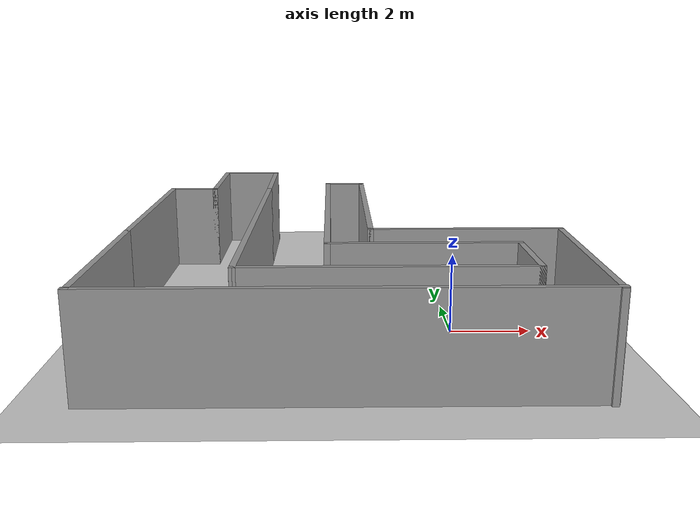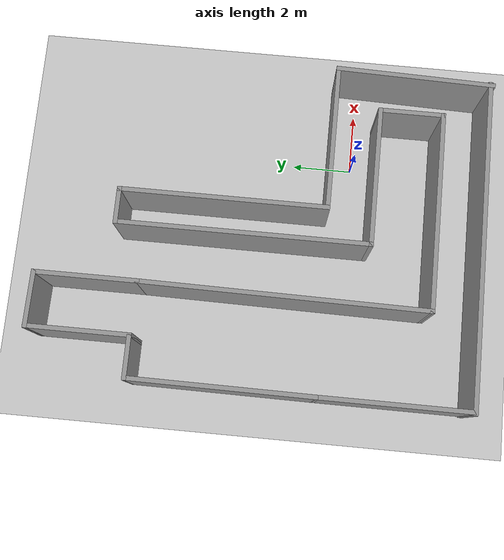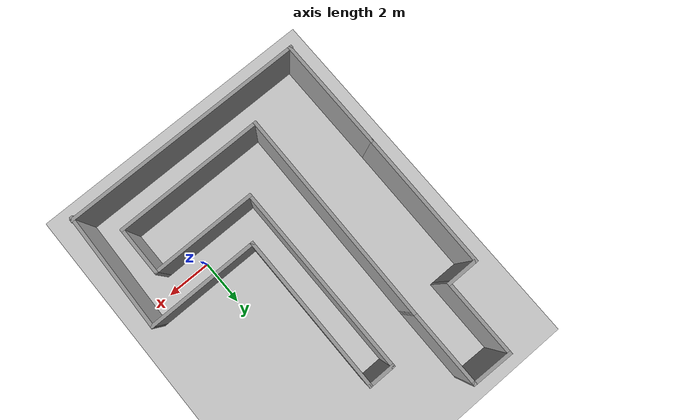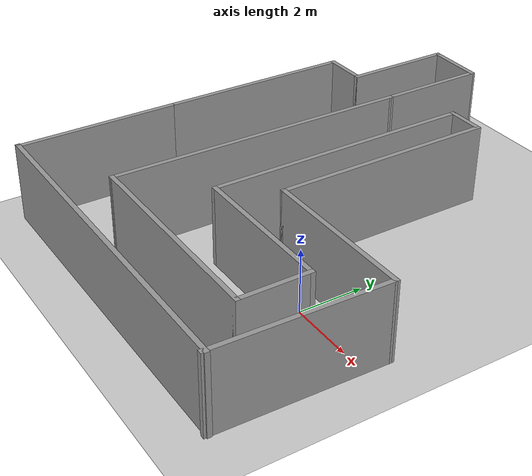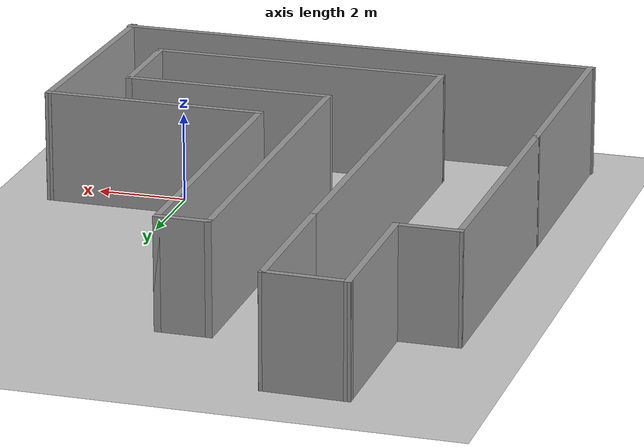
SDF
<sdf version="1.6">
 <world name="default">
  <light name="sun" type="directional">
   <pose>0 0 10 0 -0 0</pose>
   <diffuse>0.8 0.8 0.8 1</diffuse>
   <specular>0.2 0.2 0.2 1</specular>
   <attenuation>
    <range>1000</range>
    <constant>0.9</constant>
    <linear>0.01</linear>
    <quadratic>0.001</quadratic>
   </attenuation>
   <direction>-0.5 0.1 -0.9</direction>
  </light>
  <model name="ground_plane">
   <static>1</static>
   <link name="link">
    <collision name="collision">
     <geometry><plane><normal>0 0 1</normal><size>100 100</size></plane></geometry>
     <surface><friction><ode><mu>100</mu><mu2>50</mu2></ode></friction></surface>
    </collision>
    <visual name="visual">
     <cast_shadows>0</cast_shadows>
     <geometry><plane><normal>0 0 1</normal><size>100 100</size></plane></geometry>
     <material>
      <script><uri>file://media/materials/scripts/gazebo.material</uri><name>Gazebo/Grey</name></script>
     </material>
    </visual>
   </link>
  </model>
  <gravity>0 0 -9.8</gravity>
  <magnetic_field>6e-06 2.3e-05 -4.2e-05</magnetic_field>
  <atmosphere type="adiabatic"/>
  <physics name="default_physics" default="0" type="ode">
   <max_step_size>0.001</max_step_size>
   <real_time_factor>1</real_time_factor>
   <real_time_update_rate>1000</real_time_update_rate>
  </physics>
  <scene><ambient>0.4 0.4 0.4 1</ambient><background>0.7 0.7 0.7 1</background><shadows>1</shadows></scene>
  <spherical_coordinates>
   <surface_model>EARTH_WGS84</surface_model>
   <latitude_deg>0</latitude_deg>
   <longitude_deg>0</longitude_deg>
   <elevation>0</elevation>
   <heading_deg>0</heading_deg>
  </spherical_coordinates>
  <model name="room">
   <pose>-2.66124 2.8333 0 0 -0 0</pose>
   <link name="Wall_66">
    <collision name="Wall_66_Collision">
     <geometry><box><size>6.19862 0.15 2.5</size></box></geometry>
     <pose>0 0 1.25 0 -0 0</pose>
    </collision>
    <visual name="Wall_66_Visual">
     <pose>0 0 1.25 0 -0 0</pose>
     <geometry><box><size>6.19862 0.15 2.5</size></box></geometry>
     <material>
      <script><uri>file://media/materials/scripts/gazebo.material</uri><name>Gazebo/Grey</name></script>
      <ambient>1 1 1 1</ambient>
     </material>
     <meta><layer>0</layer></meta>
    </visual>
    <pose>-5.45149 0.872356 0 0 -0 1.56388</pose>
   </link>
   <link name="Wall_68">
    <collision name="Wall_68_Collision">
     <geometry><box><size>9.6563 0.15 2.5</size></box></geometry>
     <pose>0 0 1.25 0 -0 0</pose>
    </collision>
    <visual name="Wall_68_Visual">
     <pose>0 0 1.25 0 -0 0</pose>
     <geometry><box><size>9.6563 0.15 2.5</size></box></geometry>
     <material>
      <script><uri>file://media/materials/scripts/gazebo.material</uri><name>Gazebo/Grey</name></script>
      <ambient>1 1 1 1</ambient>
     </material>
     <meta><layer>0</layer></meta>
    </visual>
    <pose>-2.38333 -0.891441 0 0 -0 -1.5819</pose>
   </link>
   <link name="Wall_69">
    <collision name="Wall_69_Collision">
     <geometry><box><size>6.75 0.15 2.5</size></box></geometry>
     <pose>0 0 1.25 0 -0 0</pose>
    </collision>
    <visual name="Wall_69_Visual">
     <pose>0 0 1.25 0 -0 0</pose>
     <geometry><box><size>6.75 0.15 2.5</size></box></geometry>
     <material>
      <script><uri>file://media/materials/scripts/gazebo.material</uri><name>Gazebo/Grey</name></script>
      <ambient>1 1 1 1</ambient>
     </material>
     <meta><layer>0</layer></meta>
    </visual>
    <pose>0.863902 -5.6443 0 0 -0 0</pose>
   </link>
   <link name="Wall_70">
    <collision name="Wall_70_Collision">
     <geometry><box><size>2.25 0.15 2.5</size></box></geometry>
     <pose>0 0 1.25 0 -0 0</pose>
    </collision>
    <visual name="Wall_70_Visual">
     <pose>0 0 1.25 0 -0 0</pose>
     <geometry><box><size>2.25 0.15 2.5</size></box></geometry>
     <material>
      <script><uri>file://media/materials/scripts/gazebo.material</uri><name>Gazebo/Grey</name></script>
      <ambient>1 1 1 1</ambient>
     </material>
     <meta><layer>0</layer></meta>
    </visual>
    <pose>4.1639 -4.5943 0 0 -0 1.5708</pose>
   </link>
   <link name="Wall_71">
    <collision name="Wall_71_Collision">
     <geometry><box><size>4.75 0.15 2.5</size></box></geometry>
     <pose>0 0 1.25 0 -0 0</pose>
    </collision>
    <visual name="Wall_71_Visual">
     <pose>0 0 1.25 0 -0 0</pose>
     <geometry><box><size>4.75 0.15 2.5</size></box></geometry>
     <material>
      <script><uri>file://media/materials/scripts/gazebo.material</uri><name>Gazebo/Grey</name></script>
      <ambient>1 1 1 1</ambient>
     </material>
     <meta><layer>0</layer></meta>
    </visual>
    <pose>1.8639 -3.5443 0 0 -0 3.14159</pose>
   </link>
   <link name="Wall_72">
    <collision name="Wall_72_Collision">
     <geometry><box><size>8.5 0.15 2.5</size></box></geometry>
     <pose>0 0 1.25 0 -0 0</pose>
    </collision>
    <visual name="Wall_72_Visual">
     <pose>0 0 1.25 0 -0 0</pose>
     <geometry><box><size>8.5 0.15 2.5</size></box></geometry>
     <material>
      <script><uri>file://media/materials/scripts/gazebo.material</uri><name>Gazebo/Grey</name></script>
      <ambient>1 1 1 1</ambient>
     </material>
     <meta><layer>0</layer></meta>
    </visual>
    <pose>-0.436098 0.630704 0 0 -0 1.5708</pose>
   </link>
   <link name="Wall_73">
    <collision name="Wall_73_Collision">
     <geometry><box><size>1.25 0.15 2.5</size></box></geometry>
     <pose>0 0 1.25 0 -0 0</pose>
    </collision>
    <visual name="Wall_73_Visual">
     <pose>0 0 1.25 0 -0 0</pose>
     <geometry><box><size>1.25 0.15 2.5</size></box></geometry>
     <material>
      <script><uri>file://media/materials/scripts/gazebo.material</uri><name>Gazebo/Grey</name></script>
      <ambient>1 1 1 1</ambient>
     </material>
     <meta><layer>0</layer></meta>
    </visual>
    <pose>0.113902 4.8057 0 0 -0 0</pose>
   </link>
   <link name="Wall_74">
    <collision name="Wall_74_Collision">
     <geometry><box><size>7 0.15 2.5</size></box></geometry>
     <pose>0 0 1.25 0 -0 0</pose>
    </collision>
    <visual name="Wall_74_Visual">
     <pose>0 0 1.25 0 -0 0</pose>
     <geometry><box><size>7 0.15 2.5</size></box></geometry>
     <material>
      <script><uri>file://media/materials/scripts/gazebo.material</uri><name>Gazebo/Grey</name></script>
      <ambient>1 1 1 1</ambient>
     </material>
     <meta><layer>0</layer></meta>
    </visual>
    <pose>0.663902 1.3807 0 0 -0 -1.5708</pose>
   </link>
   <link name="Wall_75">
    <collision name="Wall_75_Collision">
     <geometry><box><size>5 0.15 2.5</size></box></geometry>
     <pose>0 0 1.25 0 -0 0</pose>
    </collision>
    <visual name="Wall_75_Visual">
     <pose>0 0 1.25 0 -0 0</pose>
     <geometry><box><size>5 0.15 2.5</size></box></geometry>
     <material>
      <script><uri>file://media/materials/scripts/gazebo.material</uri><name>Gazebo/Grey</name></script>
      <ambient>1 1 1 1</ambient>
     </material>
     <meta><layer>0</layer></meta>
    </visual>
    <pose>3.0889 -2.0443 0 0 -0 0</pose>
   </link>
   <link name="Wall_76">
    <collision name="Wall_76_Collision">
     <geometry><box><size>5.35369 0.15 2.5</size></box></geometry>
     <pose>0 0 1.25 0 -0 0</pose>
    </collision>
    <visual name="Wall_76_Visual">
     <pose>0 0 1.25 0 -0 0</pose>
     <geometry><box><size>5.35369 0.15 2.5</size></box></geometry>
     <material>
      <script><uri>file://media/materials/scripts/gazebo.material</uri><name>Gazebo/Grey</name></script>
      <ambient>1 1 1 1</ambient>
     </material>
     <meta><layer>0</layer></meta>
    </visual>
    <pose>5.44355 -4.64519 0 0 -0 -1.59784</pose>
   </link>
   <link name="Wall_77">
    <collision name="Wall_77_Collision">
     <geometry><box><size>11.0742 0.15 2.5</size></box></geometry>
     <pose>0 0 1.25 0 -0 0</pose>
    </collision>
    <visual name="Wall_77_Visual">
     <pose>0 0 1.25 0 -0 0</pose>
     <geometry><box><size>11.0742 0.15 2.5</size></box></geometry>
     <material>
      <script><uri>file://media/materials/scripts/gazebo.material</uri><name>Gazebo/Grey</name></script>
      <ambient>1 1 1 1</ambient>
     </material>
     <meta><layer>0</layer></meta>
    </visual>
    <pose>-0.053716 -7.16812 0 0 -0 3.1402</pose>
   </link>
   <link name="Wall_78">
    <collision name="Wall_78_Collision">
     <geometry><box><size>5.12346 0.15 2.5</size></box></geometry>
     <pose>0 0 1.25 0 -0 0</pose>
    </collision>
    <visual name="Wall_78_Visual">
     <pose>0 0 1.25 0 -0 0</pose>
     <geometry><box><size>5.12346 0.15 2.5</size></box></geometry>
     <material>
      <script><uri>file://media/materials/scripts/gazebo.material</uri><name>Gazebo/Grey</name></script>
      <ambient>1 1 1 1</ambient>
     </material>
     <meta><layer>0</layer></meta>
    </visual>
    <pose>-5.47652 -4.67379 0 0 -0 1.56915</pose>
   </link>
   <link name="Wall_80">
    <collision name="Wall_80_Collision">
     <geometry><box><size>1.5 0.15 2.5</size></box></geometry>
     <pose>0 0 1.25 0 -0 0</pose>
    </collision>
    <visual name="Wall_80_Visual">
     <pose>0 0 1.25 0 -0 0</pose>
     <geometry><box><size>1.5 0.15 2.5</size></box></geometry>
     <material>
      <script><uri>file://media/materials/scripts/gazebo.material</uri><name>Gazebo/Grey</name></script>
      <ambient>1 1 1 1</ambient>
     </material>
     <meta><layer>0</layer></meta>
    </visual>
    <pose>-4.75556 3.89659 0 0 -0 0</pose>
   </link>
   <link name="Wall_81">
    <collision name="Wall_81_Collision">
     <geometry><box><size>3.5 0.15 2.5</size></box></geometry>
     <pose>0 0 1.25 0 -0 0</pose>
    </collision>
    <visual name="Wall_81_Visual">
     <pose>0 0 1.25 0 -0 0</pose>
     <geometry><box><size>3.5 0.15 2.5</size></box></geometry>
     <material>
      <script><uri>file://media/materials/scripts/gazebo.material</uri><name>Gazebo/Grey</name></script>
      <ambient>1 1 1 1</ambient>
     </material>
     <meta><layer>0</layer></meta>
    </visual>
    <pose>-4.08056 5.57159 0 0 -0 1.5708</pose>
   </link>
   <link name="Wall_83">
    <collision name="Wall_83_Collision">
     <geometry><box><size>3.5 0.15 2.5</size></box></geometry>
     <pose>0 0 1.25 0 -0 0</pose>
    </collision>
    <visual name="Wall_83_Visual">
     <pose>0 0 1.25 0 -0 0</pose>
     <geometry><box><size>3.5 0.15 2.5</size></box></geometry>
     <material>
      <script><uri>file://media/materials/scripts/gazebo.material</uri><name>Gazebo/Grey</name></script>
      <ambient>1 1 1 1</ambient>
     </material>
     <meta><layer>0</layer></meta>
    </visual>
    <pose>-2.33056 5.53641 0 0 -0 1.5708</pose>
   </link>
   <link name="Wall_85">
    <collision name="Wall_85_Collision">
     <geometry><box><size>1.90035 0.15 2.5</size></box></geometry>
     <pose>0 0 1.25 0 -0 0</pose>
    </collision>
    <visual name="Wall_85_Visual">
     <pose>0 0 1.25 0 -0 0</pose>
     <geometry><box><size>1.90035 0.15 2.5</size></box></geometry>
     <material>
      <script><uri>file://media/materials/scripts/gazebo.material</uri><name>Gazebo/Grey</name></script>
      <ambient>1 1 1 1</ambient>
     </material>
     <meta><layer>0</layer></meta>
    </visual>
    <pose>-3.20556 7.229 0 0 -0 -0.020099</pose>
   </link>
   <static>1</static>
  </model>
 </world>
</sdf>
